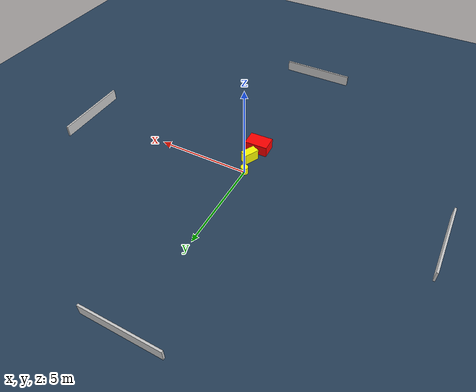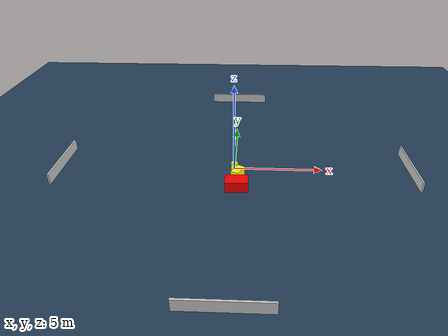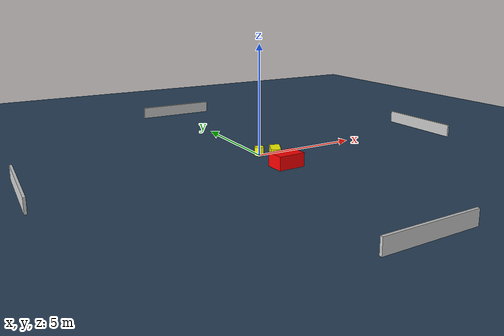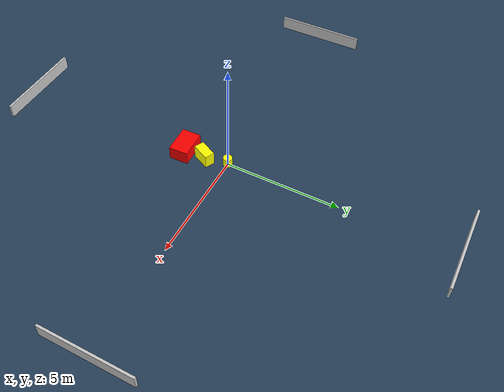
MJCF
<?xml version="1.0" ?>
<mujoco model="generated_environment">
  <option timestep="0.01" integrator="RK4" cone="elliptic"/>
  <default>
    <geom density="1"/>
  </default>
  <asset>
    <texture builtin="gradient" height="3072" name="skybox" rgb1="0.3 0.5 0.7" rgb2="0 0 0" type="skybox" width="512"/>
    <texture builtin="checker" height="300" name="groundplane" rgb1="0.2 0.3 0.4" rgb2="0.1 0.2 0.3" type="2d" width="300"/>
    <material name="groundplane" reflectance="0.2" texrepeat="5 5" texture="groundplane"/>
  </asset>
  <worldbody>
    <light dir="0 0 -1" directional="true" pos="0 0 1.5"/>
    <geom condim="3" friction="0.5 0.005 0.001" material="groundplane" name="floor" pos="0 0 0" size="0 0 0.05" type="plane"/>
    <body name="walls">
      <geom name="wall_1" condim="4" pos="-10.0 0.0 0.3" rgba="0.800000011920929 0.800000011920929 0.800000011920929 1.0" size="0.05 2.0 0.3" type="box"/>
      <geom name="wall_2" condim="4" pos="10.0 0.0 0.3" rgba="0.800000011920929 0.800000011920929 0.800000011920929 1.0" size="0.05 2.0 0.3" type="box"/>
      <geom name="wall_3" condim="4" pos="0.0 -10.0 0.3" rgba="0.800000011920929 0.800000011920929 0.800000011920929 1.0" size="2.0 0.05 0.3" type="box"/>
      <geom name="wall_4" condim="4" pos="0.0 10.0 0.3" rgba="0.800000011920929 0.800000011920929 0.800000011920929 1.0" size="2.0 0.05 0.3" type="box"/>
    </body>
    <body name="robot">
      <joint name="joint_x" type="slide" pos="0 0 0" axis="1 0 0"/>
      <joint name="joint_y" type="slide" pos="0 0 0" axis="0 1 0"/>
      <geom name="robot" type="cylinder" pos="0.0 0.0 0.2" size="0.2 0.2 0.0" mass="5.0" friction="1.0 0.005 0.0001" condim="4" rgba="1.0 1.0 0.0 1.0"/>
    </body>
    <body name="obstacle_1_movable">
      <geom name="obstacle_1_movable" condim="4" pos="0.22105489162612427 -0.9989113557134348 0.3" euler="0 0 243.75222606887306" friction="0.0 0.005 0.001" rgba="1.0 1.0 0.0 1.0" size="0.4043646192358069 0.2204676425897119 0.3" type="box" mass="0.1"/>
      <joint type="free"/>
    </body>
    <body name="obstacle_2_static">
      <geom name="obstacle_2_static" condim="4" pos="0.17956925812440078 -1.968127722167553 0.3" euler="0 0 2.183212478360139" friction="0.0 0.005 0.001" rgba="1.0 0.0 0.0 1.0" size="0.6179211832589622 0.41823902911297267 0.3" type="box"/>
    </body>
  </worldbody>
  <actuator>
    <motor name="actuator_x" joint="joint_x" gear="1" ctrlrange="-1 1"/>
    <motor name="actuator_y" joint="joint_y" gear="1" ctrlrange="-1 1"/>
  </actuator>
</mujoco>
